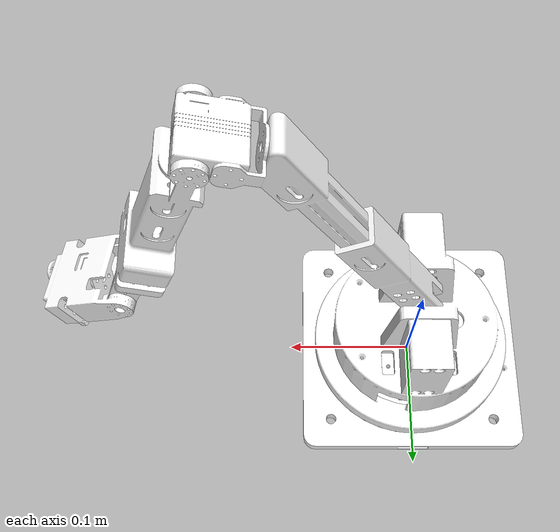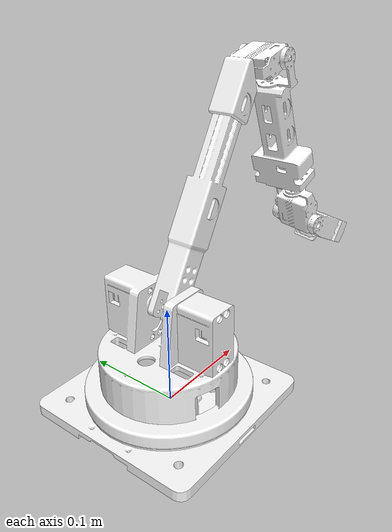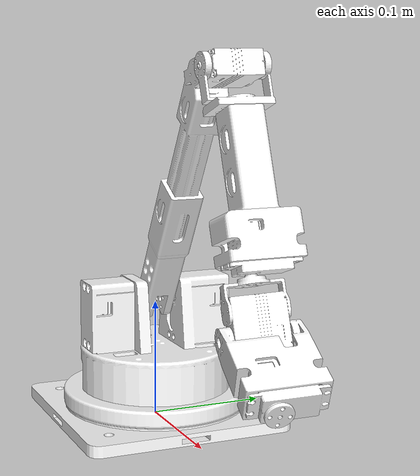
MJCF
<mujoco model="Alicia_duo_mani_basic_v0_3">
  <compiler angle="radian" autolimits="true" meshdir="./meshes/" />

  <asset>
    <mesh name="base_link" file="base_link.STL"/>
    <mesh name="link1" file="link1.STL"/>
    <mesh name="link2" file="link2.STL"/>
    <mesh name="link3" file="link3.STL"/>
    <mesh name="link4" file="link4.STL"/>
    <mesh name="link5" file="link5.STL"/>
    <mesh name="link6" file="link6.STL"/>
  </asset>

  <worldbody>
    <geom type="mesh" contype="0" conaffinity="0" group="1" density="0" rgba="1 1 1 1" mesh="base_link"/>
    <geom type="mesh" rgba="1 1 1 1" mesh="base_link"/>
    <body name="link1" pos="0 0 0.0121" quat="0.110627 0.110628 0.698401 0.698398">
      <inertial pos="-6.9961e-05 0.048527 2.2732e-05" quat="0.684373 0.176285 0.17622 0.685203" mass="0.41903" diaginertia="0.0010271 0.00063616 0.000598359"/>
      <joint name="Joint1" pos="0 0 0" axis="0 1 0" range="-3.14 3.14" actuatorfrcrange="-12 12"/>
      <geom type="mesh" contype="0" conaffinity="0" group="1" density="0" rgba="1 1 1 1" mesh="link1"/>
      <geom type="mesh" rgba="1 1 1 1" mesh="link1"/>
      <body name="link2" pos="-4.1379e-05 0.09015 1.3445e-05" quat="-0.293787 -0.509081 -0.404377 0.700718">
        <inertial pos="0.000382025 -0.126209 -0.066003" quat="0.504313 0.863081 -0.00734649 0.0265785" mass="0.136645" diaginertia="0.000112386 0.000110486 1.70144e-05"/>
        <joint name="Joint2" pos="0 0 0" axis="-1 0 0" range="-2.04 1.04" actuatorfrcrange="-12 12"/>
        <geom type="mesh" contype="0" conaffinity="0" group="1" density="0" rgba="1 1 1 1" mesh="link2"/>
        <geom type="mesh" rgba="1 1 1 1" mesh="link2"/>
        <body name="link3" pos="0 -0.23348 -0.10057" quat="0.057632 -0.704754 0.0576372 -0.704754">
          <inertial pos="0.0976602 -0.0340665 0.000539534" quat="0.820951 -0.00484652 -0.00330337 0.570968" mass="0.101796" diaginertia="3.9157e-05 2.84813e-05 2.63741e-05"/>
          <joint name="Joint3" pos="0 0 0" axis="0 0 1" range="-0.87 2.29" actuatorfrcrange="-12 12"/>
          <geom type="mesh" contype="0" conaffinity="0" group="1" density="0" rgba="1 1 1 1" mesh="link3"/>
          <geom type="mesh" rgba="1 1 1 1" mesh="link3"/>
          <body name="link4" pos="0.14979 -0.05255 0.010125" quat="0.052384 0.812438 0.575968 -0.0738971">
            <inertial pos="-0.000154084 0.0251967 -0.000427933" quat="0.697499 0.695649 0.121751 -0.121428" mass="0.0404008" diaginertia="7.00265e-06 6.17197e-06 3.34646e-06"/>
            <joint name="Joint4" pos="0 0 0" axis="0 -1 0" range="-3.14 3.14" actuatorfrcrange="-12 12"/>
            <geom type="mesh" contype="0" conaffinity="0" group="1" density="0" rgba="1 1 1 1" mesh="link4"/>
            <geom type="mesh" rgba="1 1 1 1" mesh="link4"/>
            <body name="link5" pos="0 0.036819 0" quat="0.0927897 0.829326 -0.531653 -0.144755">
              <inertial pos="-0.0153767 -0.038488 -9.71556e-05" quat="0.978921 -0.0130744 0.00729506 -0.203689" mass="0.0658419" diaginertia="2.73581e-05 2.19473e-05 1.24661e-05"/>
              <joint name="Joint5" pos="0 0 0" axis="0 0 -1" range="-0.81 2.1" actuatorfrcrange="-12 12"/>
              <geom type="mesh" contype="0" conaffinity="0" group="1" density="0" rgba="1 1 1 1" mesh="link5"/>
              <geom type="mesh" rgba="1 1 1 1" mesh="link5"/>
              <body name="link6" pos="-0.025325 -0.064179 0.009725" quat="0.186404 0.0633797 -0.012051 0.980353">
                <inertial pos="0 0.00405694 0" quat="0.707107 0 0 0.707107" mass="0.000875817" diaginertia="4.34941e-08 2.28167e-08 2.28167e-08"/>
                <joint name="Joint6" pos="0 0 0" axis="0 -1 0" range="-3.14 3.14" actuatorfrcrange="-12 12"/>
                <geom type="mesh" contype="0" conaffinity="0" group="1" density="0" rgba="1 1 1 1" mesh="link6"/>
                <geom type="mesh" rgba="1 1 1 1" mesh="link6"/>
              </body>
            </body>
          </body>
        </body>
      </body>
    </body>
  </worldbody>
</mujoco>
